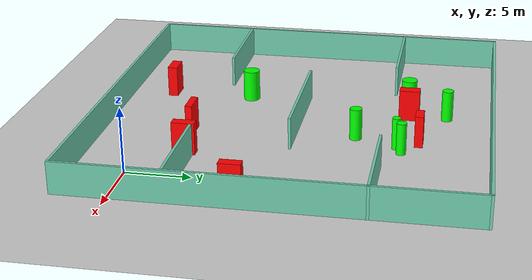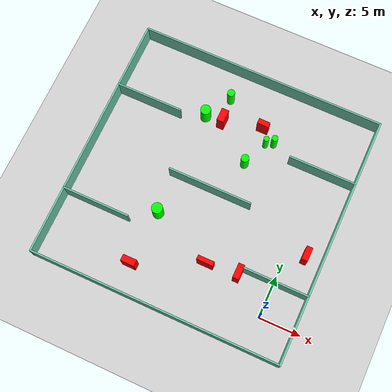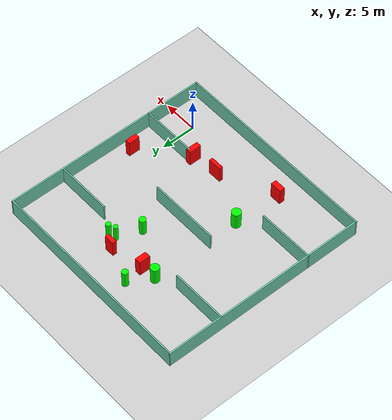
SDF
<sdf version="1.7">
 <world name="default">
  <light name="sun" type="directional">
   <pose>0 0 10 0 -0 0</pose>
   <diffuse>0.8 0.8 0.8 1</diffuse>
   <specular>0.2 0.2 0.2 1</specular>
   <attenuation>
    <range>1000</range>
    <constant>0.9</constant>
    <linear>0.01</linear>
    <quadratic>0.001</quadratic>
   </attenuation>
   <direction>-0.5 0.1 -0.9</direction>
   <spot><inner_angle>0</inner_angle><outer_angle>0</outer_angle><falloff>0</falloff></spot>
  </light>
  <model name="ground_plane">
   <static>1</static>
   <link name="link">
    <collision name="collision">
     <geometry><plane><normal>0 0 1</normal><size>100 100</size></plane></geometry>
     <surface>
      <contact><collide_bitmask>65535</collide_bitmask></contact>
      <friction><ode><mu>100</mu><mu2>50</mu2></ode></friction>
     </surface>
    </collision>
    <visual name="visual">
     <cast_shadows>0</cast_shadows>
     <geometry><plane><normal>0 0 1</normal><size>100 100</size></plane></geometry>
     <material>
      <script><uri>file://media/materials/scripts/gazebo.material</uri><name>Gazebo/Grey</name></script>
     </material>
    </visual>
   </link>
  </model>
  <gravity>0 0 -9.8</gravity>
  <magnetic_field>6e-06 2.3e-05 -4.2e-05</magnetic_field>
  <atmosphere type="adiabatic"/>
  <physics type="ode">
   <max_step_size>0.001</max_step_size>
   <real_time_factor>1</real_time_factor>
   <real_time_update_rate>1000</real_time_update_rate>
  </physics>
  <scene><ambient>0.4 0.4 0.4 1</ambient><background>0.7 0.7 0.7 1</background><shadows>1</shadows></scene>
  <spherical_coordinates>
   <surface_model>EARTH_WGS84</surface_model>
   <latitude_deg>0</latitude_deg>
   <longitude_deg>0</longitude_deg>
   <elevation>0</elevation>
   <heading_deg>0</heading_deg>
  </spherical_coordinates>
  <model name="my_base_walls">
   <link name="Wall_10">
    <collision name="Wall_10_Collision">
     <geometry><box><size>8.2 0.2 2.5</size></box></geometry>
     <pose>0 0 1.25 0 -0 0</pose>
    </collision>
    <visual name="Wall_10_Visual">
     <pose>0 0 1.25 0 -0 0</pose>
     <geometry><box><size>8.2 0.2 2.5</size></box></geometry>
     <material>
      <script><uri>file://media/materials/scripts/gazebo.material</uri><name>Gazebo/Grey</name></script>
      <ambient>0.435294 0.796078 0.67451 1</ambient>
     </material>
     <meta><layer>0</layer></meta>
    </visual>
    <pose>-11 -7 0 0 -0 0</pose>
   </link>
   <link name="Wall_12">
    <collision name="Wall_12_Collision">
     <geometry><box><size>8.2 0.2 2.5</size></box></geometry>
     <pose>0 0 1.25 0 -0 0</pose>
    </collision>
    <visual name="Wall_12_Visual">
     <pose>0 0 1.25 0 -0 0</pose>
     <geometry><box><size>8.2 0.2 2.5</size></box></geometry>
     <material>
      <script><uri>file://media/materials/scripts/gazebo.material</uri><name>Gazebo/Grey</name></script>
      <ambient>0.435294 0.796078 0.67451 1</ambient>
     </material>
     <meta><layer>0</layer></meta>
    </visual>
    <pose>-11 7 0 0 -0 0</pose>
   </link>
   <link name="Wall_14">
    <collision name="Wall_14_Collision">
     <geometry><box><size>8.2 0.2 2.5</size></box></geometry>
     <pose>0 0 1.25 0 -0 0</pose>
    </collision>
    <visual name="Wall_14_Visual">
     <pose>0 0 1.25 0 -0 0</pose>
     <geometry><box><size>8.2 0.2 2.5</size></box></geometry>
     <material>
      <script><uri>file://media/materials/scripts/gazebo.material</uri><name>Gazebo/Grey</name></script>
      <ambient>0.435294 0.796078 0.67451 1</ambient>
     </material>
     <meta><layer>0</layer></meta>
    </visual>
    <pose>11 7 0 0 -0 3.14159</pose>
   </link>
   <link name="Wall_16">
    <collision name="Wall_16_Collision">
     <geometry><box><size>10.2 0.2 2.5</size></box></geometry>
     <pose>0 0 1.25 0 -0 0</pose>
    </collision>
    <visual name="Wall_16_Visual">
     <pose>0 0 1.25 0 -0 0</pose>
     <geometry><box><size>10.2 0.2 2.5</size></box></geometry>
     <material>
      <script><uri>file://media/materials/scripts/gazebo.material</uri><name>Gazebo/Grey</name></script>
      <ambient>0.435294 0.796078 0.67451 1</ambient>
     </material>
     <meta><layer>0</layer></meta>
    </visual>
    <pose>0 0 0 0 -0 3.14159</pose>
   </link>
   <link name="Wall_2">
    <collision name="Wall_2_Collision">
     <geometry><box><size>30.2 0.2 2.5</size></box></geometry>
     <pose>0 0 1.25 0 -0 0</pose>
    </collision>
    <visual name="Wall_2_Visual">
     <pose>0 0 1.25 0 -0 0</pose>
     <geometry><box><size>30.2 0.2 2.5</size></box></geometry>
     <material>
      <script><uri>file://media/materials/scripts/gazebo.material</uri><name>Gazebo/Grey</name></script>
      <ambient>0.435294 0.796078 0.67451 1</ambient>
     </material>
     <meta><layer>0</layer></meta>
    </visual>
    <pose>0 -15 0 0 -0 3.14159</pose>
   </link>
   <link name="Wall_3">
    <collision name="Wall_3_Collision">
     <geometry><box><size>30.2 0.2 2.5</size></box></geometry>
     <pose>0 0 1.25 0 -0 0</pose>
    </collision>
    <visual name="Wall_3_Visual">
     <pose>0 0 1.25 0 -0 0</pose>
     <geometry><box><size>30.2 0.2 2.5</size></box></geometry>
     <material>
      <script><uri>file://media/materials/scripts/gazebo.material</uri><name>Gazebo/Grey</name></script>
      <ambient>0.435294 0.796078 0.67451 1</ambient>
     </material>
     <meta><layer>0</layer></meta>
    </visual>
    <pose>-15 0 0 0 -0 1.5708</pose>
   </link>
   <link name="Wall_4">
    <collision name="Wall_4_Collision">
     <geometry><box><size>30.2 0.2 2.5</size></box></geometry>
     <pose>0 0 1.25 0 -0 0</pose>
    </collision>
    <visual name="Wall_4_Visual">
     <pose>0 0 1.25 0 -0 0</pose>
     <geometry><box><size>30.2 0.2 2.5</size></box></geometry>
     <material>
      <script><uri>file://media/materials/scripts/gazebo.material</uri><name>Gazebo/Grey</name></script>
      <ambient>0.435294 0.796078 0.67451 1</ambient>
     </material>
     <meta><layer>0</layer></meta>
    </visual>
    <pose>0 15 0 0 -0 0</pose>
   </link>
   <link name="Wall_6">
    <collision name="Wall_6_Collision">
     <geometry><box><size>30.2 0.2 2.5</size></box></geometry>
     <pose>0 0 1.25 0 -0 0</pose>
    </collision>
    <visual name="Wall_6_Visual">
     <pose>0 0 1.25 0 -0 0</pose>
     <geometry><box><size>30.2 0.2 2.5</size></box></geometry>
     <material>
      <script><uri>file://media/materials/scripts/gazebo.material</uri><name>Gazebo/Grey</name></script>
      <ambient>0.435294 0.796078 0.67451 1</ambient>
     </material>
     <meta><layer>0</layer></meta>
    </visual>
    <pose>15 0 0 0 -0 1.5708</pose>
   </link>
   <link name="Wall_8">
    <collision name="Wall_8_Collision">
     <geometry><box><size>8.2 0.2 2.5</size></box></geometry>
     <pose>0 0 1.25 0 -0 0</pose>
    </collision>
    <visual name="Wall_8_Visual">
     <pose>0 0 1.25 0 -0 0</pose>
     <geometry><box><size>8.2 0.2 2.5</size></box></geometry>
     <material>
      <script><uri>file://media/materials/scripts/gazebo.material</uri><name>Gazebo/Grey</name></script>
      <ambient>0.435294 0.796078 0.67451 1</ambient>
     </material>
     <meta><layer>0</layer></meta>
    </visual>
    <pose>11 -7 0 0 -0 3.14159</pose>
   </link>
   <static>1</static>
   <pose>-11 11 0 0 -0 0</pose>
  </model>
  <model name="cylinder1">
   <static>1</static>
   <link name="link">
    <inertial>
     <mass>1</mass>
     <inertia><ixx>0.5</ixx><ixy>0</ixy><ixz>0</ixz><iyy>0.5</iyy><iyz>0</iyz><izz>1</izz></inertia>
    </inertial>
    <collision name="collision">
     <geometry><cylinder><radius>0.6207095867976404</radius><length>2.5</length></cylinder></geometry>
    </collision>
    <visual name="visual">
     <geometry><cylinder><radius>0.6207095867976404</radius><length>2.5</length></cylinder></geometry>
     <material>
      <ambient>0 1 0 1</ambient>
      <diffuse>0 1 0 1</diffuse>
      <specular>0.1 0.1 0.1 1</specular>
      <emissive>0 0 0 0</emissive>
     </material>
    </visual>
   </link>
   <pose>-15.273686661093159 19.255944758171164 1.25 0 0 0</pose>
  </model>
  <model name="cylinder2">
   <static>1</static>
   <link name="link">
    <inertial>
     <mass>1</mass>
     <inertia><ixx>0.5</ixx><ixy>0</ixy><ixz>0</ixz><iyy>0.5</iyy><iyz>0</iyz><izz>1</izz></inertia>
    </inertial>
    <collision name="collision">
     <geometry><cylinder><radius>0.4486090312308</radius><length>2.5</length></cylinder></geometry>
    </collision>
    <visual name="visual">
     <geometry><cylinder><radius>0.4486090312308</radius><length>2.5</length></cylinder></geometry>
     <material>
      <ambient>0 1 0 1</ambient>
      <diffuse>0 1 0 1</diffuse>
      <specular>0.1 0.1 0.1 1</specular>
      <emissive>0 0 0 0</emissive>
     </material>
    </visual>
   </link>
   <pose>-13.410812988806025 22.425812487907386 1.25 0 0 0</pose>
  </model>
  <model name="cylinder3">
   <static>1</static>
   <link name="link">
    <inertial>
     <mass>1</mass>
     <inertia><ixx>0.5</ixx><ixy>0</ixy><ixz>0</ixz><iyy>0.5</iyy><iyz>0</iyz><izz>1</izz></inertia>
    </inertial>
    <collision name="collision">
     <geometry><cylinder><radius>0.3276567272473843</radius><length>2.5</length></cylinder></geometry>
    </collision>
    <visual name="visual">
     <geometry><cylinder><radius>0.3276567272473843</radius><length>2.5</length></cylinder></geometry>
     <material>
      <ambient>0 1 0 1</ambient>
      <diffuse>0 1 0 1</diffuse>
      <specular>0.1 0.1 0.1 1</specular>
      <emissive>0 0 0 0</emissive>
     </material>
    </visual>
   </link>
   <pose>-7.360054574807139 18.881242396818735 1.25 0 0 0</pose>
  </model>
  <model name="cylinder4">
   <static>1</static>
   <link name="link">
    <inertial>
     <mass>1</mass>
     <inertia><ixx>0.5</ixx><ixy>0</ixy><ixz>0</ixz><iyy>0.5</iyy><iyz>0</iyz><izz>1</izz></inertia>
    </inertial>
    <collision name="collision">
     <geometry><cylinder><radius>0.4756662397997149</radius><length>2.5</length></cylinder></geometry>
    </collision>
    <visual name="visual">
     <geometry><cylinder><radius>0.4756662397997149</radius><length>2.5</length></cylinder></geometry>
     <material>
      <ambient>0 1 0 1</ambient>
      <diffuse>0 1 0 1</diffuse>
      <specular>0.1 0.1 0.1 1</specular>
      <emissive>0 0 0 0</emissive>
     </material>
    </visual>
   </link>
   <pose>-8.661541452281707 15.673482788838832 1.25 0 0 0</pose>
  </model>
  <model name="cylinder5">
   <static>1</static>
   <link name="link">
    <inertial>
     <mass>1</mass>
     <inertia><ixx>0.5</ixx><ixy>0</ixy><ixz>0</ixz><iyy>0.5</iyy><iyz>0</iyz><izz>1</izz></inertia>
    </inertial>
    <collision name="collision">
     <geometry><cylinder><radius>0.37716683382567256</radius><length>2.5</length></cylinder></geometry>
    </collision>
    <visual name="visual">
     <geometry><cylinder><radius>0.37716683382567256</radius><length>2.5</length></cylinder></geometry>
     <material>
      <ambient>0 1 0 1</ambient>
      <diffuse>0 1 0 1</diffuse>
      <specular>0.1 0.1 0.1 1</specular>
      <emissive>0 0 0 0</emissive>
     </material>
    </visual>
   </link>
   <pose>-6.486549201797594 19.3279240952872 1.25 0 0 0</pose>
  </model>
  <model name="cylinder6">
   <static>1</static>
   <link name="link">
    <inertial>
     <mass>1</mass>
     <inertia><ixx>0.5</ixx><ixy>0</ixy><ixz>0</ixz><iyy>0.5</iyy><iyz>0</iyz><izz>1</izz></inertia>
    </inertial>
    <collision name="collision">
     <geometry><cylinder><radius>0.6562231469954868</radius><length>2.5</length></cylinder></geometry>
    </collision>
    <visual name="visual">
     <geometry><cylinder><radius>0.6562231469954868</radius><length>2.5</length></cylinder></geometry>
     <material>
      <ambient>0 1 0 1</ambient>
      <diffuse>0 1 0 1</diffuse>
      <specular>0.1 0.1 0.1 1</specular>
      <emissive>0 0 0 0</emissive>
     </material>
    </visual>
   </link>
   <pose>-15.311612263783134 6.155997520335259 1.25 0 0 0</pose>
  </model>
  <model name="box1">
   <static>1</static>
   <link name="link">
    <inertial>
     <mass>1</mass>
     <inertia><ixx>0.083</ixx><ixy>0</ixy><ixz>0</ixz><iyy>0.083</iyy><iyz>0</iyz><izz>0.083</izz></inertia>
    </inertial>
    <collision name="collision">
     <geometry><box><size>0.731580114641706 1.6331222790769395 2.5</size></box></geometry>
    </collision>
    <visual name="visual">
     <geometry><box><size>0.731580114641706 1.6331222790769395 2.5</size></box></geometry>
     <material>
      <ambient>1 0 0 1</ambient>
      <diffuse>1 0 0 1</diffuse>
      <specular>0.1 0.1 0.1 1</specular>
      <emissive>0 0 0 0</emissive>
     </material>
    </visual>
    <sensor name="my_contact" type="contact">
     <contact><collision>box_collision</collision><topic>__default_topic__</topic></contact>
    </sensor>
   </link>
   <pose>2.065155317225898 8.336913112081087 1.25 0 0 0</pose>
  </model>
  <model name="box2">
   <static>1</static>
   <link name="link">
    <inertial>
     <mass>1</mass>
     <inertia><ixx>0.083</ixx><ixy>0</ixy><ixz>0</ixz><iyy>0.083</iyy><iyz>0</iyz><izz>0.083</izz></inertia>
    </inertial>
    <collision name="collision">
     <geometry><box><size>1.6660893051464745 0.7799504403946389 2.5</size></box></geometry>
    </collision>
    <visual name="visual">
     <geometry><box><size>1.6660893051464745 0.7799504403946389 2.5</size></box></geometry>
     <material>
      <ambient>1 0 0 1</ambient>
      <diffuse>1 0 0 1</diffuse>
      <specular>0.1 0.1 0.1 1</specular>
      <emissive>0 0 0 0</emissive>
     </material>
    </visual>
    <sensor name="my_contact" type="contact">
     <contact><collision>box_collision</collision><topic>__default_topic__</topic></contact>
    </sensor>
   </link>
   <pose>-15.607053024858494 -0.49787800836148843 1.25 0 0 0</pose>
  </model>
  <model name="box3">
   <static>1</static>
   <link name="link">
    <inertial>
     <mass>1</mass>
     <inertia><ixx>0.083</ixx><ixy>0</ixy><ixz>0</ixz><iyy>0.083</iyy><iyz>0</iyz><izz>0.083</izz></inertia>
    </inertial>
    <collision name="collision">
     <geometry><box><size>1.401786874851263 0.6379664309365357 2.5</size></box></geometry>
    </collision>
    <visual name="visual">
     <geometry><box><size>1.401786874851263 0.6379664309365357 2.5</size></box></geometry>
     <material>
      <ambient>1 0 0 1</ambient>
      <diffuse>1 0 0 1</diffuse>
      <specular>0.1 0.1 0.1 1</specular>
      <emissive>0 0 0 0</emissive>
     </material>
    </visual>
    <sensor name="my_contact" type="contact">
     <contact><collision>box_collision</collision><topic>__default_topic__</topic></contact>
    </sensor>
   </link>
   <pose>-8.431676135661686 20.537908847181583 1.25 0 0 0</pose>
  </model>
  <model name="box4">
   <static>1</static>
   <link name="link">
    <inertial>
     <mass>1</mass>
     <inertia><ixx>0.083</ixx><ixy>0</ixy><ixz>0</ixz><iyy>0.083</iyy><iyz>0</iyz><izz>0.083</izz></inertia>
    </inertial>
    <collision name="collision">
     <geometry><box><size>0.8780314521456796 1.6054824591206962 2.5</size></box></geometry>
    </collision>
    <visual name="visual">
     <geometry><box><size>0.8780314521456796 1.6054824591206962 2.5</size></box></geometry>
     <material>
      <ambient>1 0 0 1</ambient>
      <diffuse>1 0 0 1</diffuse>
      <specular>0.1 0.1 0.1 1</specular>
      <emissive>0 0 0 0</emissive>
     </material>
    </visual>
    <sensor name="my_contact" type="contact">
     <contact><collision>box_collision</collision><topic>__default_topic__</topic></contact>
    </sensor>
   </link>
   <pose>-13.166585869500778 19.441310760446314 1.25 0 0 0</pose>
  </model>
  <model name="box5">
   <static>1</static>
   <link name="link">
    <inertial>
     <mass>1</mass>
     <inertia><ixx>0.083</ixx><ixy>0</ixy><ixz>0</ixz><iyy>0.083</iyy><iyz>0</iyz><izz>0.083</izz></inertia>
    </inertial>
    <collision name="collision">
     <geometry><box><size>0.7631025330411202 1.7531012290717671 2.5</size></box></geometry>
    </collision>
    <visual name="visual">
     <geometry><box><size>0.7631025330411202 1.7531012290717671 2.5</size></box></geometry>
     <material>
      <ambient>1 0 0 1</ambient>
      <diffuse>1 0 0 1</diffuse>
      <specular>0.1 0.1 0.1 1</specular>
      <emissive>0 0 0 0</emissive>
     </material>
    </visual>
    <sensor name="my_contact" type="contact">
     <contact><collision>box_collision</collision><topic>__default_topic__</topic></contact>
    </sensor>
   </link>
   <pose>-4.048246632810319 3.400380974952422 1.25 0 0 0</pose>
  </model>
  <model name="box6">
   <static>1</static>
   <link name="link">
    <inertial>
     <mass>1</mass>
     <inertia><ixx>0.083</ixx><ixy>0</ixy><ixz>0</ixz><iyy>0.083</iyy><iyz>0</iyz><izz>0.083</izz></inertia>
    </inertial>
    <collision name="collision">
     <geometry><box><size>1.9678485697305421 0.5291992038659543 2.5</size></box></geometry>
    </collision>
    <visual name="visual">
     <geometry><box><size>1.9678485697305421 0.5291992038659543 2.5</size></box></geometry>
     <material>
      <ambient>1 0 0 1</ambient>
      <diffuse>1 0 0 1</diffuse>
      <specular>0.1 0.1 0.1 1</specular>
      <emissive>0 0 0 0</emissive>
     </material>
    </visual>
    <sensor name="my_contact" type="contact">
     <contact><collision>box_collision</collision><topic>__default_topic__</topic></contact>
    </sensor>
   </link>
   <pose>-7.880399177378356 2.977226480944317 1.25 0 0 0</pose>
  </model>
 </world>
</sdf>
